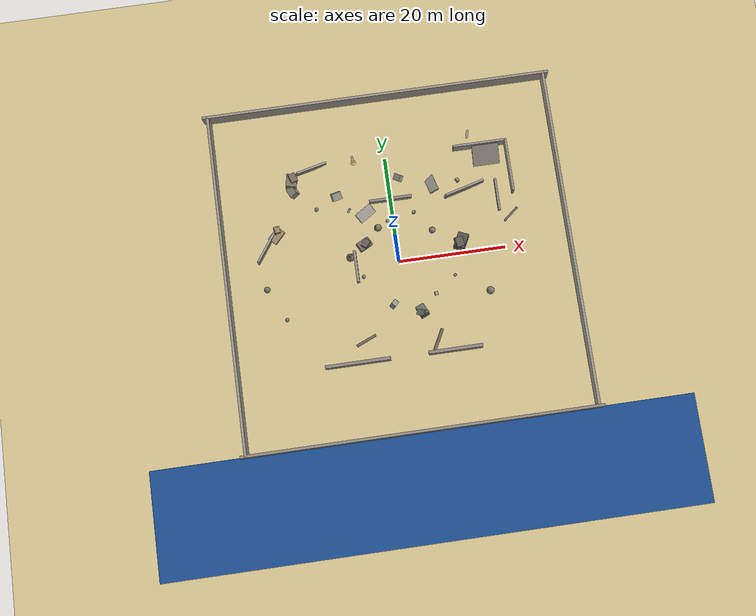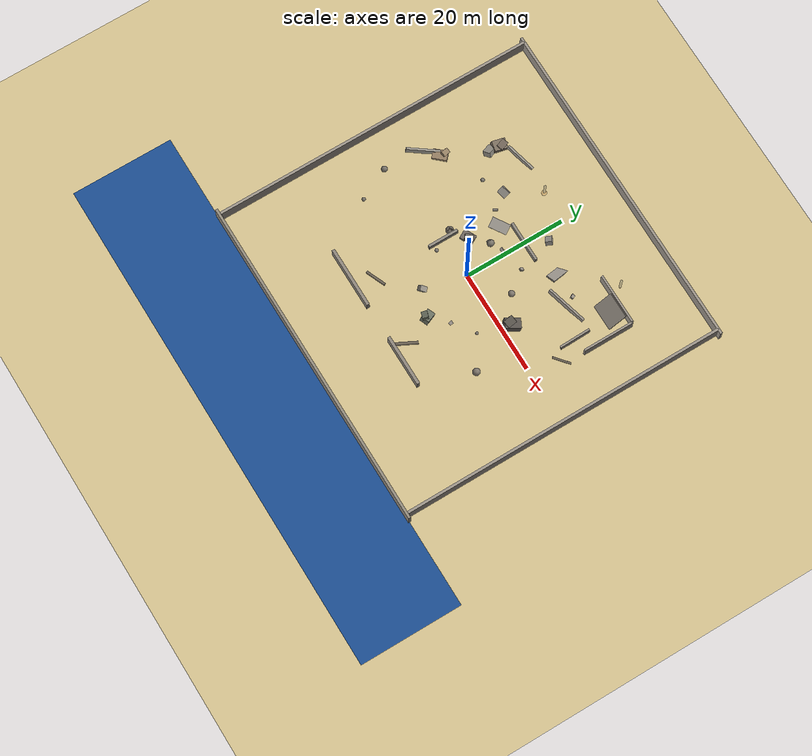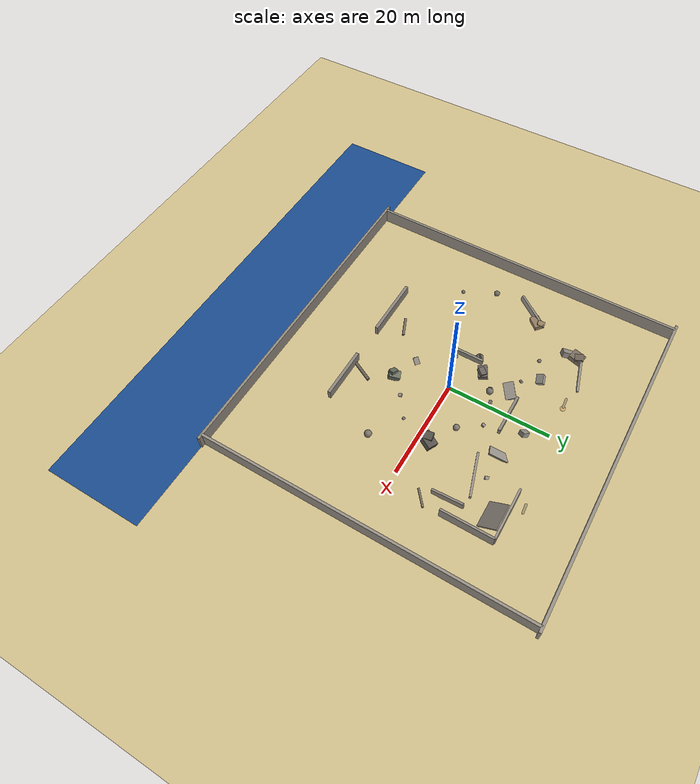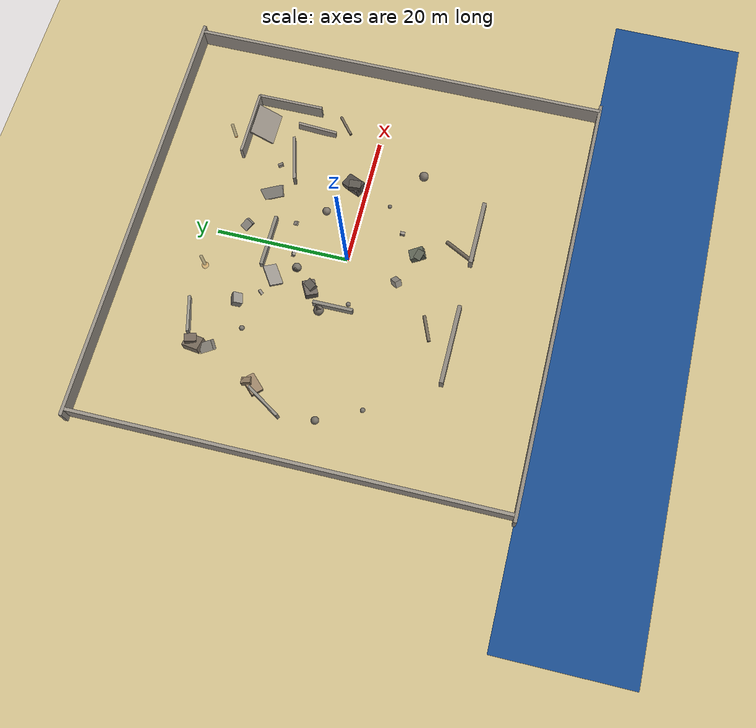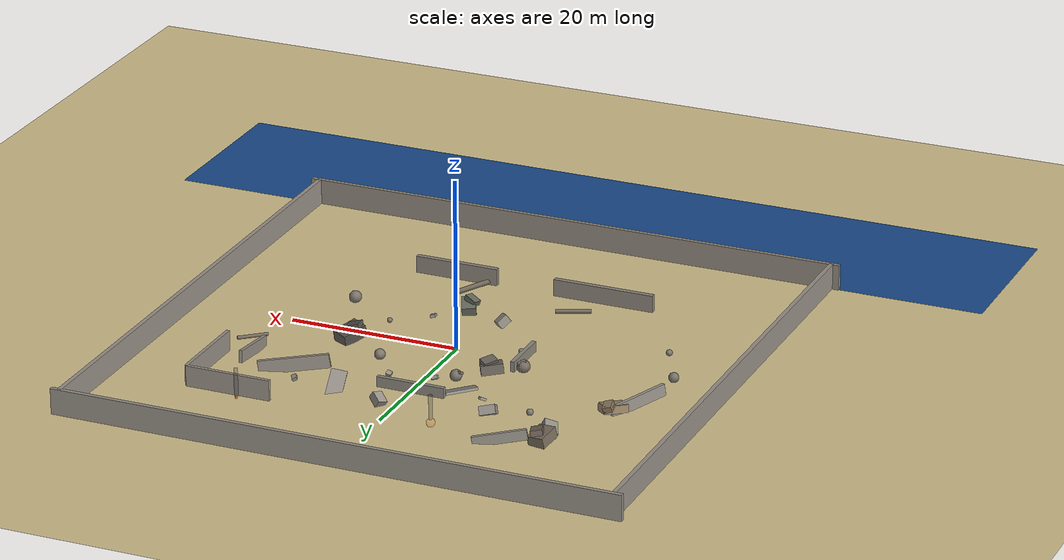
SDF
<sdf version="1.8">
 <world name="beach_disaster_world">
  <model name="ground_plane">
   <static>true</static>
   <link name="link">
    <collision name="collision">
     <geometry><plane><normal>0 0 1</normal><size>80 80</size></plane></geometry>
     <surface><friction><ode><mu>0.9</mu><mu2>0.9</mu2></ode></friction></surface>
    </collision>
    <visual name="visual">
     <geometry><plane><normal>0 0 1</normal><size>80 80</size></plane></geometry>
     <material>
      <ambient>0.76 0.70 0.50 1</ambient>
      <diffuse>0.82 0.75 0.55 1</diffuse>
      <specular>0.10 0.09 0.07 1</specular>
     </material>
    </visual>
   </link>
  </model>
  <model name="ocean_plane">
   <static>true</static>
   <pose>0 -42 -0.05 0 0 0</pose>
   <link name="link">
    <visual name="visual">
     <geometry><plane><normal>0 0 1</normal><size>100 20</size></plane></geometry>
     <material>
      <ambient>0.04 0.22 0.50 0.88</ambient>
      <diffuse>0.05 0.28 0.60 0.88</diffuse>
      <specular>0.50 0.50 0.50 1</specular>
     </material>
    </visual>
   </link>
  </model>
  <model name="boundary_wall_north">
   <static>true</static>
   <pose>0 32 1.5 0 0 0</pose>
   <link name="link">
    <collision name="c"><geometry><box><size>66 0.5 3.0</size></box></geometry></collision>
    <visual name="v">
     <geometry><box><size>66 0.5 3.0</size></box></geometry>
     <material><ambient>0.55 0.52 0.48 1</ambient><diffuse>0.60 0.57 0.53 1</diffuse></material>
    </visual>
   </link>
  </model>
  <model name="boundary_wall_south">
   <static>true</static>
   <pose>0 -32 1.5 0 0 0</pose>
   <link name="link">
    <collision name="c"><geometry><box><size>66 0.5 3.0</size></box></geometry></collision>
    <visual name="v">
     <geometry><box><size>66 0.5 3.0</size></box></geometry>
     <material><ambient>0.52 0.49 0.44 1</ambient><diffuse>0.57 0.54 0.49 1</diffuse></material>
    </visual>
   </link>
  </model>
  <model name="boundary_wall_east">
   <static>true</static>
   <pose>32 0 1.5 0 0 1.5708</pose>
   <link name="link">
    <collision name="c"><geometry><box><size>64 0.5 3.0</size></box></geometry></collision>
    <visual name="v">
     <geometry><box><size>64 0.5 3.0</size></box></geometry>
     <material><ambient>0.55 0.52 0.48 1</ambient><diffuse>0.60 0.57 0.53 1</diffuse></material>
    </visual>
   </link>
  </model>
  <model name="boundary_wall_west">
   <static>true</static>
   <pose>-32 0 1.5 0 0 1.5708</pose>
   <link name="link">
    <collision name="c"><geometry><box><size>64 0.5 3.0</size></box></geometry></collision>
    <visual name="v">
     <geometry><box><size>64 0.5 3.0</size></box></geometry>
     <material><ambient>0.55 0.52 0.48 1</ambient><diffuse>0.60 0.57 0.53 1</diffuse></material>
    </visual>
   </link>
  </model>
  <model name="seawall_segment_1">
   <static>true</static>
   <pose>-10 -18 1.0 0 0 0</pose>
   <link name="link">
    <collision name="c"><geometry><box><size>12 0.6 2.0</size></box></geometry></collision>
    <visual name="v">
     <geometry><box><size>12 0.6 2.0</size></box></geometry>
     <material><ambient>0.50 0.47 0.43 1</ambient><diffuse>0.55 0.52 0.48 1</diffuse></material>
    </visual>
   </link>
  </model>
  <model name="seawall_segment_2">
   <static>true</static>
   <pose>8 -18 1.0 0 0 0</pose>
   <link name="link">
    <collision name="c"><geometry><box><size>10 0.6 2.0</size></box></geometry></collision>
    <visual name="v">
     <geometry><box><size>10 0.6 2.0</size></box></geometry>
     <material><ambient>0.50 0.47 0.43 1</ambient><diffuse>0.55 0.52 0.48 1</diffuse></material>
    </visual>
   </link>
  </model>
  <model name="ruin_wall_1">
   <static>true</static>
   <pose>18 20 1.2 0 0 0</pose>
   <link name="link">
    <collision name="c"><geometry><box><size>10 0.4 2.4</size></box></geometry></collision>
    <visual name="v">
     <geometry><box><size>10 0.4 2.4</size></box></geometry>
     <material><ambient>0.56 0.53 0.49 1</ambient><diffuse>0.61 0.58 0.54 1</diffuse></material>
    </visual>
   </link>
  </model>
  <model name="ruin_wall_2">
   <static>true</static>
   <pose>23 15 1.2 0 0 1.5708</pose>
   <link name="link">
    <collision name="c"><geometry><box><size>10 0.4 2.4</size></box></geometry></collision>
    <visual name="v">
     <geometry><box><size>10 0.4 2.4</size></box></geometry>
     <material><ambient>0.54 0.51 0.47 1</ambient><diffuse>0.59 0.56 0.52 1</diffuse></material>
    </visual>
   </link>
  </model>
  <model name="ruin_wall_3">
   <static>true</static>
   <pose>14 12 0.8 0 0.15 0.3</pose>
   <link name="link">
    <collision name="c"><geometry><box><size>8 0.4 1.6</size></box></geometry></collision>
    <visual name="v">
     <geometry><box><size>8 0.4 1.6</size></box></geometry>
     <material><ambient>0.55 0.52 0.48 1</ambient><diffuse>0.60 0.57 0.53 1</diffuse></material>
    </visual>
   </link>
  </model>
  <model name="ruin_wall_4">
   <static>true</static>
   <pose>20 10 0.7 0 -0.1 1.5708</pose>
   <link name="link">
    <collision name="c"><geometry><box><size>6 0.4 1.4</size></box></geometry></collision>
    <visual name="v">
     <geometry><box><size>6 0.4 1.4</size></box></geometry>
     <material><ambient>0.53 0.50 0.46 1</ambient><diffuse>0.58 0.55 0.51 1</diffuse></material>
    </visual>
   </link>
  </model>
  <model name="ruin_roof_slab">
   <static>true</static>
   <pose>19 18 1.0 0.6 0 0</pose>
   <link name="link">
    <collision name="c"><geometry><box><size>5 4 0.3</size></box></geometry></collision>
    <visual name="v">
     <geometry><box><size>5 4 0.3</size></box></geometry>
     <material><ambient>0.52 0.49 0.45 1</ambient><diffuse>0.57 0.54 0.50 1</diffuse></material>
    </visual>
   </link>
  </model>
  <model name="boulder_A">
   <static>true</static>
   <pose>-6 4 0 0 0 0.5</pose>
   <link name="base">
    <pose>0 0 0.55 0.15 0.10 0</pose>
    <collision name="c"><geometry><box><size>2.5 1.8 1.10</size></box></geometry></collision>
    <visual name="v">
     <geometry><box><size>2.5 1.8 1.10</size></box></geometry>
     <material>
      <ambient>0.38 0.35 0.32 1</ambient>
      <diffuse>0.43 0.40 0.37 1</diffuse>
      <specular>0.06 0.06 0.06 1</specular>
     </material>
    </visual>
   </link>
   <link name="cap">
    <pose>0.3 -0.2 1.2 -0.2 0.15 0.4</pose>
    <collision name="c"><geometry><box><size>1.6 1.2 0.7</size></box></geometry></collision>
    <visual name="v">
     <geometry><box><size>1.6 1.2 0.7</size></box></geometry>
     <material>
      <ambient>0.35 0.33 0.30 1</ambient>
      <diffuse>0.40 0.38 0.35 1</diffuse>
      <specular>0.05 0.05 0.05 1</specular>
     </material>
    </visual>
   </link>
  </model>
  <model name="boulder_B">
   <static>true</static>
   <pose>12 2 0 0 0 1.1</pose>
   <link name="base">
    <pose>0 0 0.7 -0.10 0.20 0</pose>
    <collision name="c"><geometry><box><size>3.0 2.0 1.40</size></box></geometry></collision>
    <visual name="v">
     <geometry><box><size>3.0 2.0 1.40</size></box></geometry>
     <material>
      <ambient>0.28 0.26 0.24 1</ambient>
      <diffuse>0.33 0.31 0.29 1</diffuse>
      <specular>0.08 0.08 0.08 1</specular>
     </material>
    </visual>
   </link>
   <link name="cap">
    <pose>-0.4 0.3 1.5 0.25 -0.10 0.6</pose>
    <collision name="c"><geometry><box><size>1.8 1.5 0.8</size></box></geometry></collision>
    <visual name="v">
     <geometry><box><size>1.8 1.5 0.8</size></box></geometry>
     <material>
      <ambient>0.30 0.28 0.25 1</ambient>
      <diffuse>0.35 0.33 0.30 1</diffuse>
      <specular>0.07 0.07 0.07 1</specular>
     </material>
    </visual>
   </link>
  </model>
  <model name="boulder_C">
   <static>true</static>
   <pose>-22 8 0 0 0 0.8</pose>
   <link name="base">
    <pose>0 0 0.45 0.12 -0.08 0</pose>
    <collision name="c"><geometry><box><size>2.8 1.8 0.90</size></box></geometry></collision>
    <visual name="v">
     <geometry><box><size>2.8 1.8 0.90</size></box></geometry>
     <material>
      <ambient>0.55 0.46 0.35 1</ambient>
      <diffuse>0.60 0.51 0.40 1</diffuse>
      <specular>0.04 0.04 0.03 1</specular>
     </material>
    </visual>
   </link>
   <link name="side">
    <pose>0.8 0.5 0.9 0.3 0.2 1.0</pose>
    <collision name="c"><geometry><box><size>1.4 1.0 0.7</size></box></geometry></collision>
    <visual name="v">
     <geometry><box><size>1.4 1.0 0.7</size></box></geometry>
     <material>
      <ambient>0.52 0.44 0.33 1</ambient>
      <diffuse>0.57 0.49 0.38 1</diffuse>
      <specular>0.04 0.04 0.03 1</specular>
     </material>
    </visual>
   </link>
  </model>
  <model name="boulder_D">
   <static>true</static>
   <pose>3 -10 0 0 0 2.0</pose>
   <link name="base">
    <pose>0 0 0.60 0.08 0.28 0</pose>
    <collision name="c"><geometry><box><size>2.2 1.6 1.20</size></box></geometry></collision>
    <visual name="v">
     <geometry><box><size>2.2 1.6 1.20</size></box></geometry>
     <material>
      <ambient>0.36 0.38 0.32 1</ambient>
      <diffuse>0.41 0.43 0.37 1</diffuse>
      <specular>0.06 0.06 0.05 1</specular>
     </material>
    </visual>
   </link>
   <link name="cap">
    <pose>-0.2 0.4 1.3 -0.15 0.35 0.8</pose>
    <collision name="c"><geometry><box><size>1.5 1.1 0.6</size></box></geometry></collision>
    <visual name="v">
     <geometry><box><size>1.5 1.1 0.6</size></box></geometry>
     <material>
      <ambient>0.34 0.36 0.30 1</ambient>
      <diffuse>0.39 0.41 0.35 1</diffuse>
      <specular>0.05 0.05 0.04 1</specular>
     </material>
    </visual>
   </link>
  </model>
  <model name="boulder_E">
   <static>true</static>
   <pose>-18 18 0 0 0 1.4</pose>
   <link name="base">
    <pose>0 0 0.62 0.10 0.18 0</pose>
    <collision name="c"><geometry><box><size>2.6 2.0 1.25</size></box></geometry></collision>
    <visual name="v">
     <geometry><box><size>2.6 2.0 1.25</size></box></geometry>
     <material>
      <ambient>0.42 0.37 0.31 1</ambient>
      <diffuse>0.47 0.42 0.36 1</diffuse>
      <specular>0.07 0.07 0.06 1</specular>
     </material>
    </visual>
   </link>
   <link name="cap">
    <pose>0.5 -0.3 1.4 0.20 -0.12 0.5</pose>
    <collision name="c"><geometry><box><size>1.7 1.3 0.65</size></box></geometry></collision>
    <visual name="v">
     <geometry><box><size>1.7 1.3 0.65</size></box></geometry>
     <material>
      <ambient>0.40 0.35 0.30 1</ambient>
      <diffuse>0.45 0.40 0.35 1</diffuse>
      <specular>0.06 0.06 0.05 1</specular>
     </material>
    </visual>
   </link>
  </model>
  <model name="rock_med_A">
   <static>true</static>
   <pose>-9 2 0 0.3 0.2 0.6</pose>
   <link name="link">
    <pose>0 0 0.38 0 0 0</pose>
    <collision name="c"><geometry><sphere><radius>0.75</radius></sphere></geometry></collision>
    <visual name="v">
     <geometry><sphere><radius>0.75</radius></sphere></geometry>
     <material><ambient>0.40 0.37 0.33 1</ambient><diffuse>0.45 0.42 0.38 1</diffuse></material>
    </visual>
   </link>
   <link name="top">
    <pose>0.1 0.1 0.80 0.4 0.2 0</pose>
    <collision name="c"><geometry><box><size>0.9 0.7 0.5</size></box></geometry></collision>
    <visual name="v">
     <geometry><box><size>0.9 0.7 0.5</size></box></geometry>
     <material><ambient>0.38 0.35 0.32 1</ambient><diffuse>0.43 0.40 0.37 1</diffuse></material>
    </visual>
   </link>
  </model>
  <model name="rock_med_B">
   <static>true</static>
   <pose>7 5 0 -0.2 0.1 1.3</pose>
   <link name="link">
    <pose>0 0 0.32 0 0 0</pose>
    <collision name="c"><geometry><sphere><radius>0.62</radius></sphere></geometry></collision>
    <visual name="v">
     <geometry><sphere><radius>0.62</radius></sphere></geometry>
     <material><ambient>0.44 0.41 0.37 1</ambient><diffuse>0.49 0.46 0.42 1</diffuse></material>
    </visual>
   </link>
  </model>
  <model name="rock_med_C">
   <static>true</static>
   <pose>-3 7 0 0.1 -0.3 0.9</pose>
   <link name="link">
    <pose>0 0 0.35 0 0 0</pose>
    <collision name="c"><geometry><sphere><radius>0.68</radius></sphere></geometry></collision>
    <visual name="v">
     <geometry><sphere><radius>0.68</radius></sphere></geometry>
     <material><ambient>0.42 0.40 0.36 1</ambient><diffuse>0.47 0.45 0.41 1</diffuse></material>
    </visual>
   </link>
   <link name="flat">
    <pose>-0.2 0.2 0.7 0.3 -0.2 0.5</pose>
    <collision name="c"><geometry><box><size>0.8 0.6 0.3</size></box></geometry></collision>
    <visual name="v">
     <geometry><box><size>0.8 0.6 0.3</size></box></geometry>
     <material><ambient>0.40 0.38 0.34 1</ambient><diffuse>0.45 0.43 0.39 1</diffuse></material>
    </visual>
   </link>
  </model>
  <model name="rock_med_D">
   <static>true</static>
   <pose>16 -8 0 0.2 0.15 2.1</pose>
   <link name="link">
    <pose>0 0 0.40 0 0 0</pose>
    <collision name="c"><geometry><sphere><radius>0.72</radius></sphere></geometry></collision>
    <visual name="v">
     <geometry><sphere><radius>0.72</radius></sphere></geometry>
     <material><ambient>0.43 0.40 0.36 1</ambient><diffuse>0.48 0.45 0.41 1</diffuse></material>
    </visual>
   </link>
  </model>
  <model name="rock_med_E">
   <static>true</static>
   <pose>-25 -2 0 -0.1 0.2 0.4</pose>
   <link name="link">
    <pose>0 0 0.30 0 0 0</pose>
    <collision name="c"><geometry><sphere><radius>0.58</radius></sphere></geometry></collision>
    <visual name="v">
     <geometry><sphere><radius>0.58</radius></sphere></geometry>
     <material><ambient>0.41 0.39 0.35 1</ambient><diffuse>0.46 0.44 0.40 1</diffuse></material>
    </visual>
   </link>
  </model>
  <model name="rock_sm_1">
   <static>true</static>
   <pose>-7 -2 0 0.4 0.3 1.0</pose>
   <link name="link">
    <pose>0 0 0.18 0 0 0</pose>
    <collision name="c"><geometry><sphere><radius>0.35</radius></sphere></geometry></collision>
    <visual name="v">
     <geometry><sphere><radius>0.35</radius></sphere></geometry>
     <material><ambient>0.45 0.43 0.40 1</ambient><diffuse>0.50 0.48 0.45 1</diffuse></material>
    </visual>
   </link>
  </model>
  <model name="rock_sm_2">
   <static>true</static>
   <pose>10 -4 0 0.2 -0.2 0.5</pose>
   <link name="link">
    <pose>0 0 0.16 0 0 0</pose>
    <collision name="c"><geometry><sphere><radius>0.30</radius></sphere></geometry></collision>
    <visual name="v">
     <geometry><sphere><radius>0.30</radius></sphere></geometry>
     <material><ambient>0.43 0.41 0.38 1</ambient><diffuse>0.48 0.46 0.43 1</diffuse></material>
    </visual>
   </link>
  </model>
  <model name="rock_sm_3">
   <static>true</static>
   <pose>-14 12 0 0.1 0.4 2.3</pose>
   <link name="link">
    <pose>0 0 0.20 0 0 0</pose>
    <collision name="c"><geometry><sphere><radius>0.38</radius></sphere></geometry></collision>
    <visual name="v">
     <geometry><sphere><radius>0.38</radius></sphere></geometry>
     <material><ambient>0.44 0.42 0.38 1</ambient><diffuse>0.49 0.47 0.43 1</diffuse></material>
    </visual>
   </link>
  </model>
  <model name="rock_sm_4">
   <static>true</static>
   <pose>0 3 0 -0.3 0.1 0.7</pose>
   <link name="link">
    <pose>0 0 0.17 0 0 0</pose>
    <collision name="c"><geometry><sphere><radius>0.33</radius></sphere></geometry></collision>
    <visual name="v">
     <geometry><sphere><radius>0.33</radius></sphere></geometry>
     <material><ambient>0.42 0.40 0.37 1</ambient><diffuse>0.47 0.45 0.42 1</diffuse></material>
    </visual>
   </link>
  </model>
  <model name="rock_sm_5">
   <static>true</static>
   <pose>-22 -8 0 0.2 -0.4 1.5</pose>
   <link name="link">
    <pose>0 0 0.19 0 0 0</pose>
    <collision name="c"><geometry><sphere><radius>0.37</radius></sphere></geometry></collision>
    <visual name="v">
     <geometry><sphere><radius>0.37</radius></sphere></geometry>
     <material><ambient>0.43 0.41 0.37 1</ambient><diffuse>0.48 0.46 0.42 1</diffuse></material>
    </visual>
   </link>
  </model>
  <model name="debris_slab_1">
   <static>true</static>
   <pose>-5 10 0.25 0.3 0.1 0.6</pose>
   <link name="link">
    <collision name="c"><geometry><box><size>3.5 2.0 0.3</size></box></geometry></collision>
    <visual name="v">
     <geometry><box><size>3.5 2.0 0.3</size></box></geometry>
     <material><ambient>0.55 0.53 0.50 1</ambient><diffuse>0.60 0.58 0.55 1</diffuse></material>
    </visual>
   </link>
  </model>
  <model name="debris_slab_2">
   <static>true</static>
   <pose>8 14 0.3 -0.2 0.4 1.8</pose>
   <link name="link">
    <collision name="c"><geometry><box><size>4.0 1.8 0.3</size></box></geometry></collision>
    <visual name="v">
     <geometry><box><size>4.0 1.8 0.3</size></box></geometry>
     <material><ambient>0.52 0.50 0.47 1</ambient><diffuse>0.57 0.55 0.52 1</diffuse></material>
    </visual>
   </link>
  </model>
  <model name="debris_chunk_1">
   <static>true</static>
   <pose>-10 14 0.5 0.5 0.2 0.3</pose>
   <link name="link">
    <collision name="c"><geometry><box><size>1.8 1.4 1.0</size></box></geometry></collision>
    <visual name="v">
     <geometry><box><size>1.8 1.4 1.0</size></box></geometry>
     <material><ambient>0.53 0.51 0.48 1</ambient><diffuse>0.58 0.56 0.53 1</diffuse></material>
    </visual>
   </link>
  </model>
  <model name="debris_chunk_2">
   <static>true</static>
   <pose>2 16 0.45 -0.3 0.5 2.5</pose>
   <link name="link">
    <collision name="c"><geometry><box><size>1.5 1.2 0.9</size></box></geometry></collision>
    <visual name="v">
     <geometry><box><size>1.5 1.2 0.9</size></box></geometry>
     <material><ambient>0.54 0.52 0.49 1</ambient><diffuse>0.59 0.57 0.54 1</diffuse></material>
    </visual>
   </link>
  </model>
  <model name="debris_chunk_3">
   <static>true</static>
   <pose>-2 -8 0.5 0.2 0.6 0.9</pose>
   <link name="link">
    <collision name="c"><geometry><box><size>1.4 1.0 1.0</size></box></geometry></collision>
    <visual name="v">
     <geometry><box><size>1.4 1.0 1.0</size></box></geometry>
     <material><ambient>0.53 0.51 0.47 1</ambient><diffuse>0.58 0.56 0.52 1</diffuse></material>
    </visual>
   </link>
  </model>
  <model name="debris_chunk_4">
   <static>true</static>
   <pose>-18 16 0.55 -0.4 0.3 2.0</pose>
   <link name="link">
    <collision name="c"><geometry><box><size>2.0 1.5 1.1</size></box></geometry></collision>
    <visual name="v">
     <geometry><box><size>2.0 1.5 1.1</size></box></geometry>
     <material><ambient>0.52 0.50 0.46 1</ambient><diffuse>0.57 0.55 0.51 1</diffuse></material>
    </visual>
   </link>
  </model>
  <model name="pipe_washed_1">
   <static>true</static>
   <pose>-8 -14 0.3 0 1.57 0.4</pose>
   <link name="link">
    <collision name="c">
     <geometry><cylinder><radius>0.25</radius><length>4.0</length></cylinder></geometry>
    </collision>
    <visual name="v">
     <geometry><cylinder><radius>0.25</radius><length>4.0</length></cylinder></geometry>
     <material><ambient>0.40 0.36 0.30 1</ambient><diffuse>0.45 0.41 0.35 1</diffuse></material>
    </visual>
   </link>
  </model>
  <model name="pipe_washed_2">
   <static>true</static>
   <pose>5 -16 0.3 0 1.57 1.1</pose>
   <link name="link">
    <collision name="c">
     <geometry><cylinder><radius>0.30</radius><length>5.0</length></cylinder></geometry>
    </collision>
    <visual name="v">
     <geometry><cylinder><radius>0.30</radius><length>5.0</length></cylinder></geometry>
     <material><ambient>0.38 0.34 0.28 1</ambient><diffuse>0.43 0.39 0.33 1</diffuse></material>
    </visual>
   </link>
  </model>
  <model name="pipe_washed_3">
   <static>true</static>
   <pose>22 6 0.25 0 1.57 0.7</pose>
   <link name="link">
    <collision name="c">
     <geometry><cylinder><radius>0.20</radius><length>3.5</length></cylinder></geometry>
    </collision>
    <visual name="v">
     <geometry><cylinder><radius>0.20</radius><length>3.5</length></cylinder></geometry>
     <material><ambient>0.41 0.37 0.31 1</ambient><diffuse>0.46 0.42 0.36 1</diffuse></material>
    </visual>
   </link>
  </model>
  <model name="wall_collapsed_1">
   <static>true</static>
   <pose>-14 20 0.6 0 0.2 0.3</pose>
   <link name="link">
    <collision name="c"><geometry><box><size>6.0 0.4 1.2</size></box></geometry></collision>
    <visual name="v">
     <geometry><box><size>6.0 0.4 1.2</size></box></geometry>
     <material><ambient>0.56 0.54 0.50 1</ambient><diffuse>0.61 0.59 0.55 1</diffuse></material>
    </visual>
   </link>
  </model>
  <model name="wall_collapsed_2">
   <static>true</static>
   <pose>-24 6 0.7 0 0.15 1.0</pose>
   <link name="link">
    <collision name="c"><geometry><box><size>7.0 0.4 1.4</size></box></geometry></collision>
    <visual name="v">
     <geometry><box><size>7.0 0.4 1.4</size></box></geometry>
     <material><ambient>0.55 0.53 0.49 1</ambient><diffuse>0.60 0.58 0.54 1</diffuse></material>
    </visual>
   </link>
  </model>
  <model name="path_blocker_1">
   <static>true</static>
   <pose>0 12 0.6 0 0 0</pose>
   <link name="link">
    <collision name="c"><geometry><box><size>8.0 0.5 1.2</size></box></geometry></collision>
    <visual name="v">
     <geometry><box><size>8.0 0.5 1.2</size></box></geometry>
     <material><ambient>0.50 0.48 0.44 1</ambient><diffuse>0.55 0.53 0.49 1</diffuse></material>
    </visual>
   </link>
  </model>
  <model name="path_blocker_2">
   <static>true</static>
   <pose>-8 0 0.6 0 0 1.5708</pose>
   <link name="link">
    <collision name="c"><geometry><box><size>6.0 0.5 1.2</size></box></geometry></collision>
    <visual name="v">
     <geometry><box><size>6.0 0.5 1.2</size></box></geometry>
     <material><ambient>0.50 0.48 0.44 1</ambient><diffuse>0.55 0.53 0.49 1</diffuse></material>
    </visual>
   </link>
  </model>
  <model name="rubble_1">
   <static>true</static>
   <pose>-1 8 0.2 0.5 0.3 0.2</pose>
   <link name="link">
    <collision name="c"><geometry><box><size>0.7 0.5 0.4</size></box></geometry></collision>
    <visual name="v">
     <geometry><box><size>0.7 0.5 0.4</size></box></geometry>
     <material><ambient>0.55 0.52 0.48 1</ambient><diffuse>0.60 0.57 0.53 1</diffuse></material>
    </visual>
   </link>
  </model>
  <model name="rubble_2">
   <static>true</static>
   <pose>4 9 0.2 -0.3 0.4 1.4</pose>
   <link name="link">
    <collision name="c"><geometry><box><size>0.6 0.6 0.35</size></box></geometry></collision>
    <visual name="v">
     <geometry><box><size>0.6 0.6 0.35</size></box></geometry>
     <material><ambient>0.54 0.51 0.47 1</ambient><diffuse>0.59 0.56 0.52 1</diffuse></material>
    </visual>
   </link>
  </model>
  <model name="rubble_3">
   <static>true</static>
   <pose>-8 11 0.2 0.2 -0.5 0.9</pose>
   <link name="link">
    <collision name="c"><geometry><box><size>0.8 0.4 0.3</size></box></geometry></collision>
    <visual name="v">
     <geometry><box><size>0.8 0.4 0.3</size></box></geometry>
     <material><ambient>0.56 0.53 0.49 1</ambient><diffuse>0.61 0.58 0.54 1</diffuse></material>
    </visual>
   </link>
  </model>
  <model name="rubble_4">
   <static>true</static>
   <pose>13 14 0.2 0.4 0.2 2.1</pose>
   <link name="link">
    <collision name="c"><geometry><box><size>0.75 0.55 0.4</size></box></geometry></collision>
    <visual name="v">
     <geometry><box><size>0.75 0.55 0.4</size></box></geometry>
     <material><ambient>0.53 0.50 0.46 1</ambient><diffuse>0.58 0.55 0.51 1</diffuse></material>
    </visual>
   </link>
  </model>
  <model name="rubble_5">
   <static>true</static>
   <pose>6 -7 0.18 0.3 -0.2 1.7</pose>
   <link name="link">
    <collision name="c"><geometry><box><size>0.7 0.6 0.35</size></box></geometry></collision>
    <visual name="v">
     <geometry><box><size>0.7 0.6 0.35</size></box></geometry>
     <material><ambient>0.54 0.51 0.47 1</ambient><diffuse>0.59 0.56 0.52 1</diffuse></material>
    </visual>
   </link>
  </model>
  <model name="fire_vfx_1">
   <static>true</static>
   <pose>-6 20 0.9 0 0 0</pose>
   <link name="flame">
    <visual name="core">
     <geometry><cylinder><radius>0.16</radius><length>0.65</length></cylinder></geometry>
     <material>
      <ambient>1.0 0.38 0.0 1</ambient>
      <diffuse>1.0 0.42 0.0 1</diffuse>
      <emissive>0.9 0.22 0.0 1</emissive>
     </material>
     <transparency>0.20</transparency>
    </visual>
    <visual name="glow">
     <geometry><sphere><radius>0.50</radius></sphere></geometry>
     <material>
      <ambient>1.0 0.48 0.0 0.12</ambient>
      <diffuse>1.0 0.48 0.0 0.12</diffuse>
      <emissive>0.7 0.18 0.0 0.12</emissive>
     </material>
     <transparency>0.88</transparency>
    </visual>
    <visual name="smoke">
     <pose>0 0 1.6 0 0 0</pose>
     <geometry><cylinder><radius>0.22</radius><length>3.2</length></cylinder></geometry>
     <material><ambient>0.20 0.20 0.20 0.28</ambient><diffuse>0.24 0.24 0.24 0.28</diffuse></material>
     <transparency>0.72</transparency>
    </visual>
   </link>
  </model>
  <model name="fire_vfx_2">
   <static>true</static>
   <pose>16 22 0.9 0 0 0</pose>
   <link name="flame">
    <visual name="core">
     <geometry><cylinder><radius>0.16</radius><length>0.65</length></cylinder></geometry>
     <material>
      <ambient>1.0 0.38 0.0 1</ambient>
      <diffuse>1.0 0.42 0.0 1</diffuse>
      <emissive>0.9 0.22 0.0 1</emissive>
     </material>
     <transparency>0.20</transparency>
    </visual>
    <visual name="smoke">
     <pose>0 0 1.6 0 0 0</pose>
     <geometry><cylinder><radius>0.22</radius><length>3.2</length></cylinder></geometry>
     <material><ambient>0.20 0.20 0.20 0.28</ambient><diffuse>0.24 0.24 0.24 0.28</diffuse></material>
     <transparency>0.72</transparency>
    </visual>
   </link>
  </model>
 </world>
</sdf>
